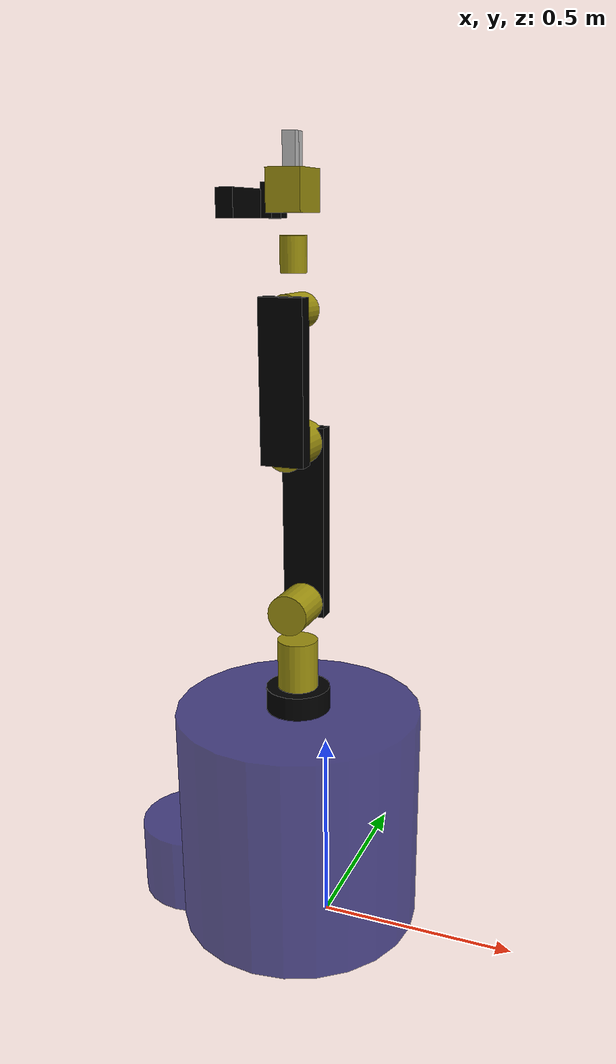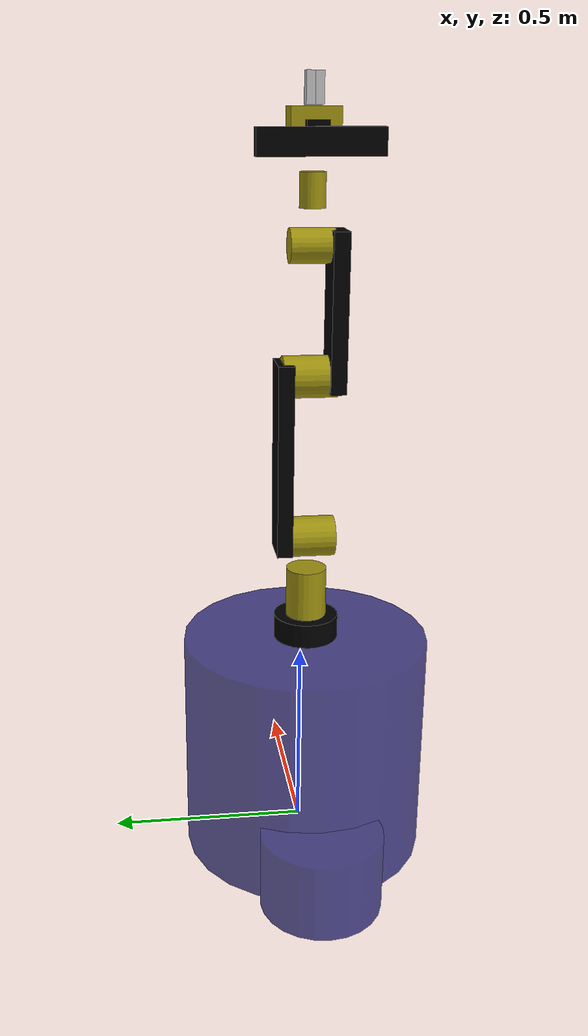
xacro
<robot name="scitos_haw_schunk" xmlns:xacro="http://ros.org/wiki/xacro">

<!-- Scitos and properties -->
<include filename="$(find metralabs_ros)/Models/xacro/scitos_haw_only.xacro" />

<!-- Links macros -->
<include filename="$(find metralabs_ros)/Models/xacro/scitos_haw_schunk_links.xacro" />
<!-- Joints macros -->
<include filename="$(find metralabs_ros)/Models/xacro/scitos_haw_schunk_joints.xacro" />

<xacro:DH  name="DH1"/><!-- base of arm -->
<xacro:PRL name="DH2" type="100"/><!-- ~center of base swivel joint ID20 -->
<xacro:PRL name="DH3" type="100"/><!-- center of first pitch joint ID21 -->
<xacro:PRL name="DH4" type="100"/><!-- center of second pitch joint ID22 -->
<xacro:PRL name="DH5" type="80"/><!-- center of third pitch joint ID23 -->
<xacro:PRL name="DH6" type="60"/><!-- center of hand roll joint ID24 -->

<xacro:Connector name="ConnBase" >
    <cylinder radius="0.080" length="0.060" /> <!--values ok-->
</xacro:Connector>
<xacro:connect parent="DH1" child="ConnBase"/>

<xacro:Connector_long name="ConnLong1" length="400"/>
<xacro:Connector_long name="ConnLong2" length="300"/>
<xacro:connect parent="DH3" child="ConnLong1"/>
<xacro:connect parent="DH4" child="ConnLong2"/>

<link name="Gripper">
  <visual>
    <origin xyz="0 0 0" rpy="0 0 0" />
    <geometry>
        <box size="0.090 0.080 0.112" />
    </geometry>
    <material name="golden"/>
  </visual>
  <collision>
    <origin xyz="0.040 0 0"/>
    <geometry>
        <box size="0.185 0.100 0.132" />
    </geometry>
  </collision>
</link>

<xacro:GripperFinger name="GFpos" reflect="1"/>
<xacro:GripperFinger name="GFneg" reflect="-1"/>

<link name="CameraMount">
  <visual>
    <origin xyz="-0.0085 0 -0.003210" rpy="0 0 0" />
    <geometry>
        <box size="0.073 0.051 0.025" /><!-- Werte vermessen -->
    </geometry>
    <material name="black"/>
  </visual>
  <collision>
    <geometry>
        <box size="0.090 0.070  0.030" />
    </geometry>
  </collision>
</link>
<xacro:connect_xyz_rpy parent="Gripper" child="CameraMount" xyz="-0.011 -0.055 0" rpy="${0.25*tau} 0 0"/><!-- Werte berechnet -->

<link name="Kinect">
  <visual>
    <geometry>
        <box size="0.06 0.28 0.04" /><!-- Werte auf cm vermessen -->
    </geometry>
    <material name="black"/>
  </visual>
  <collision>
    <geometry>
        <box size="0.08 0.30 0.06" />
    </geometry>
  </collision>
</link>
<xacro:connect_xyz parent="CameraMount" child="Kinect" xyz="-0.015 0 0.04"/><!-- Werte auf cm vermessen -->

</robot>

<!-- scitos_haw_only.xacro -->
<robot name="scitos_haw_only" xmlns:xacro="http://ros.org/wiki/xacro">

<include filename="$(find metralabs_ros)/Models/xacro/scitos_haw_properties.xacro" />

<link name="base_link"><!--Odometry origin, former called ScitosBase -->
  <visual>
    <origin xyz="-0.075 0 ${scitos_height/2}" rpy="0 0 0" />
    <geometry>
      <cylinder radius="${scitos_width/2}" length="${scitos_height}" />
    </geometry>
    <material name="scitosblue"/>
  </visual>
  <collision>
    <origin xyz="-0.075 0 ${scitos_height/2 + 0.1/2}" rpy="0 0 0" />
    <geometry>
      <cylinder radius="${scitos_width*1.2/2}" length="${scitos_height+0.1}" />
    </geometry>
  </collision>
</link>

<link name="tail">
  <visual>
    <geometry>
      <cylinder radius="0.15" length="0.20" />
    </geometry>
    <material name="scitosblue"/>
  </visual>
  <collision>
    <geometry>
      <cylinder radius="0.25" length="0.30" />
    </geometry>
  </collision>
</link>
<xacro:connect_xyz parent="base_link" child="tail" xyz="${-0.075-0.30} 0 0.10"/>

<!-- Laserscanner, no effect beside nice to see -->

</robot>

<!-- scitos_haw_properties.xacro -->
<robot xmlns:xacro="http://ros.org/wiki/xacro">

<!-- Properties -->

<!--mathematical-->
<xacro:property name="tau" value="6.283185307179586" /><!-- circle constant -->
<xacro:property name="pi" value="3.1415926535897931" /><!-- for legacy: pi = tau/2 -->

<!--physical-->
<xacro:property name="scitos_width" value="0.617" />
<xacro:property name="scitos_height" value="0.583" />
<xacro:property name="gripper_space" value="0.068" /><!--0-68 mm-->
<xacro:property name="schunk_base_offset_front" value="0.040" /><!--arm mounted in front position-->
<xacro:property name="schunk_base_offset_center" value="-0.075" /><!--arm mounted in center position-->
<xacro:property name="schunk_base_offset_rear" value="-0.252" /><!--arm mounted in rear position-->

<!--restraint-->
<xacro:property name="max_vel" value="0.43" /> <!--abgerundete geschwindigkeit des langsamsten gelenks-->

 <!--quark: 2.88r/s ~= 16°/s was etwa die Hälfte der mittleren Maximalgeschwindigkeit der Drehgelenke ist... halt moment, 2.88 muss Quark sein.. -->

<!-- Materials -->

<material name="black">
    <color rgba="0 0 0 1"/>
</material>

<material name="gray">
    <color rgba="0.15 0.15 0.15 1"/>
</material>

<material name="golden">
    <color rgba="0.62 0.57 0.06 1"/>
</material>

<material name="scitosblue">
    <color rgba=".0 .0 .4 0.7" />
</material>

<material name="aluminium">
    <color rgba=".75 .75 .75 1" />
</material>

<material name="yellow">
    <color rgba="1 0.94 0.14 1"/>
</material>

<!-- Joint macros -->

<xacro:macro name="connect" params="parent child">
    <xacro:connect_xyz parent="${parent}" child="${child}" xyz="0 0 0"/>
</xacro:macro>

<xacro:macro name="connect_xyz" params="parent child xyz">
    <xacro:connect_xyz_rpy parent="${parent}" child="${child}" xyz="${xyz}" rpy="0 0 0"/>
</xacro:macro>

<xacro:macro name="connect_xyz_rpy" params="parent child xyz rpy">
    <joint name="${parent}_${child}" type="fixed">
        <origin xyz="${xyz}" rpy="${rpy}" />
        <parent link="${parent}"/>
        <child link="${child}"/>
    </joint>
</xacro:macro>

</robot>

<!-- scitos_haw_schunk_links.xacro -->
<robot xmlns:xacro="http://ros.org/wiki/xacro">

<!-- Links macros -->

<!-- invisible joint center for separating DH transformation and physical components -->
<xacro:macro name="DH" params="name">
<link name="${name}">
</link>
</xacro:macro>

<!-- schunk PRL model joint -->
<xacro:macro name="PRL" params="name type">
<link name="${name}" >
    <visual>
        <geometry>
            <cylinder radius="${0.001*type/2}" length="${0.0013*type}"/>
        </geometry>
        <material name="golden"/>
    </visual>

    <collision>
        <geometry>
            <cylinder radius="${0.001*type/1.2}" length="0.118"/>
        </geometry>
    </collision>
</link>
</xacro:macro>

<!-- general connector with definable shape -->
TODO: remove macro? or disable collision in another way
<xacro:macro name="Connector" params="name *shape">
<link name="${name}">
  <visual>
    <origin xyz="0 0 0.030"/>
    <geometry>
      <xacro:insert_block name="shape" />
    </geometry>
    <material name="black"/>
  </visual>

</link>
</xacro:macro>

<!-- long flat connector between joints -->
<xacro:macro name="Connector_long" params="name length">
<link name="${name}" >
    <visual>
        <origin xyz="${0.001*length/2} 0 ${0.061}"/>
        <geometry>
            <box size="${0.001*length+0.07} 0.105 0.038"/>
        </geometry>
        <material name="black"/>
    </visual>

    <collision>
        <origin xyz="${0.001*length/2} 0 ${0.060+0.05}"/>
        <geometry>
            <box size="${0.001*length+0.07+0.04} 0.110 0.08"/>
        </geometry>
    </collision>
</link>
</xacro:macro>

<xacro:macro name="GripperFinger" params="name reflect">
<link name="${name}" >
    <visual>
        <origin xyz="${0.035} 0 ${1*0.020/2}"/> <!--offsets to set fingers ontop the gripper and beside the coordinate center-->
        <geometry>
            <box size="0.070 0.030 0.020"/> <!--real finger size-->
        </geometry>
        <material name="aluminium"/>
    </visual>

</link>
</xacro:macro>

</robot>

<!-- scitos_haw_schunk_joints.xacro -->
<robot xmlns:xacro="http://ros.org/wiki/xacro">

 <joint name="DH_B_1" type="fixed">
    <origin xyz="${schunk_base_offset_center} 0 ${scitos_height}" rpy="0 0 0"/>
    <parent link="base_link"/>
    <child link="DH1"/>
 </joint>
 <joint name="DH_1_2" type="revolute">
	<!-- ~center of base swivel joint ID20 -->
    <!-- the ~center means: both z of this and below added must equal 0.268 -->
    <origin xyz="0 0 0.120" rpy="0 0 0"/>
    <parent link="DH1"/>
    <child link="DH2"/>
    <axis xyz="0 0 -1" />
    <limit lower="-3.141593" upper="3.141593" effort="2" velocity="${max_vel}" />
 </joint>
 <joint name="DH_2_3" type="revolute">
	<!-- center of first pitch joint ID21 -->
    <origin xyz="0 0 0.148" rpy="${0.25*tau} ${-0.25*tau} ${0.5*tau}"/>
    <parent link="DH2"/>
    <child link="DH3"/>
    <axis xyz="0 0 -1" />
    <limit lower="-2.024580" upper="2.024580" effort="2" velocity="${max_vel}" />
 </joint>
 <joint name="DH_3_4" type="revolute">
    <!-- center of second pitch joint ID22 -->
    <origin xyz="0.400 0 0" rpy="${0.5*tau} 0 0"/>
    <parent link="DH3"/>
    <child link="DH4"/>
    <axis xyz="0 0 -1" />
    <limit lower="-2.740166" upper="2.740166" effort="2" velocity="${max_vel}" />
 </joint>
 <joint name="DH_4_5" type="revolute">
	<!-- center of third pitch joint ID23 -->
    <origin xyz="0.300 0 0" rpy="${0.5*tau} 0 0"/>
    <parent link="DH4"/>
    <child link="DH5"/>
    <axis xyz="0 0 -1" />
    <limit lower="-2.373644" upper="2.286380" effort="2" velocity="${max_vel}" />
 </joint>
 <joint name="DH_5_6" type="revolute">
	<!-- center of hand roll joint ID24 -->
    <origin xyz="0.121 0 0" rpy="0 ${0.25*tau} 0"/>
    <parent link="DH5"/>
    <child link="DH6"/>
    <axis xyz="0 0 -1" />
    <limit lower="-3.143321" upper="3.143321" effort="2" velocity="${max_vel}" />
 </joint>
 <joint name="DH_6_GR" type="fixed">
    <origin xyz="0 0 0.130" rpy="0 ${-0.25*tau} 0"/>
    <parent link="DH6"/>
    <child link="Gripper"/>
 </joint>

 <joint name="GR_Fpos" type="prismatic">
    <origin xyz="0 0 0" rpy="${0.5*tau} 0 0"/>
    <parent link="GFneg"/>
    <child link="GFpos"/>
    <axis xyz="0 0 1" />
    <limit lower="-0.000250" upper="0.068111" effort="2" velocity="0.08" />
 </joint>

 <joint name="GR_Fneg" type="prismatic">
    <origin xyz="0.047 0 0" rpy="0 0 0"/>
    <parent link="Gripper"/>
    <child link="GFneg"/>
    <axis xyz="0 0 1" />
    <limit lower="-0.000250" upper="0.068111" effort="2" velocity="0.08" />
    <mimic joint="GR_Fpos" multiplier="0.5" offset="0"/>
 </joint>

</robot>
